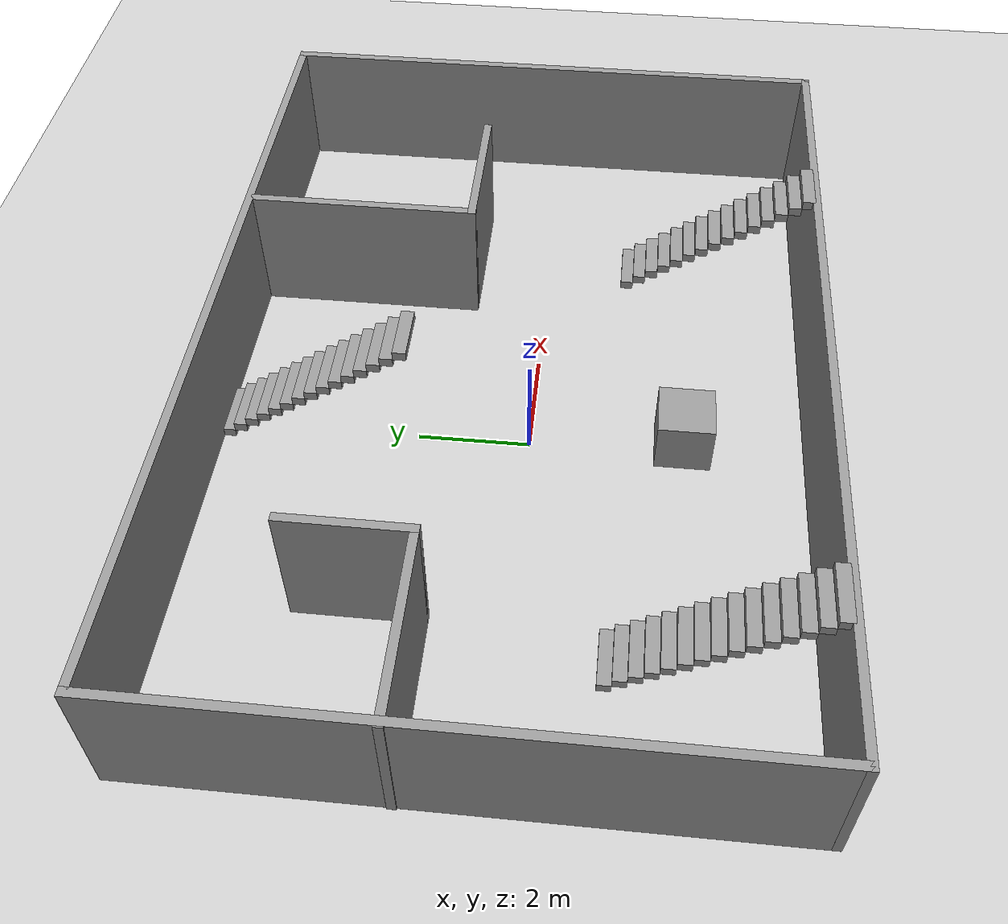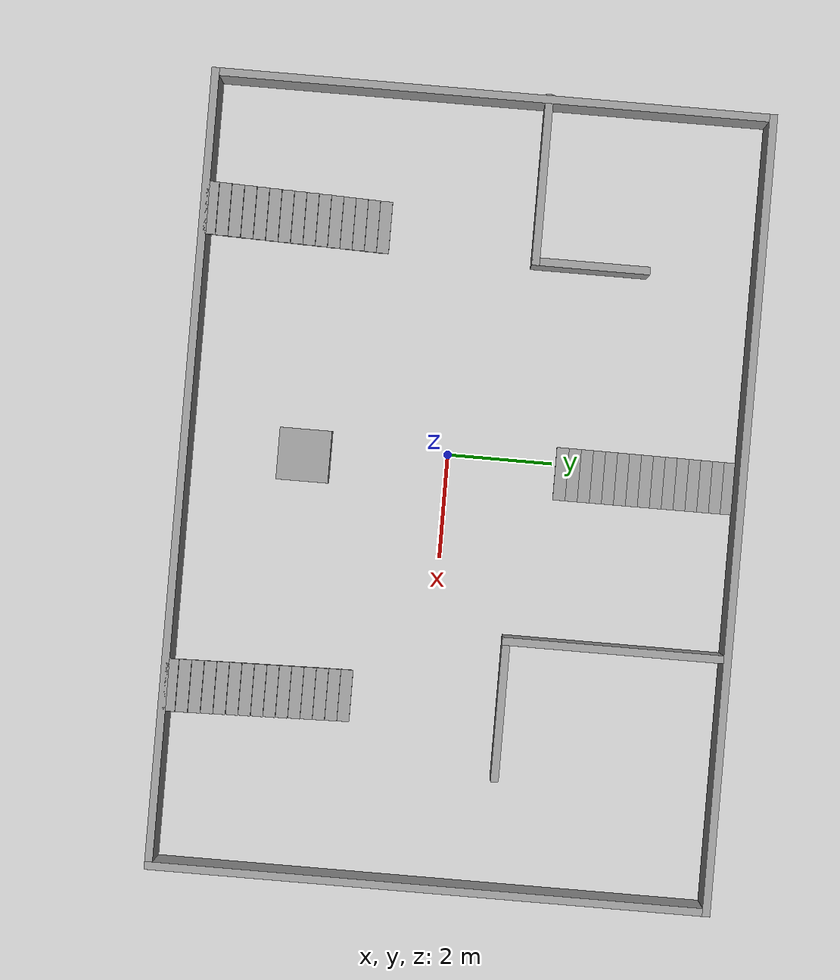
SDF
<sdf version="1.7">
 <world name="default">
  <light name="sun" type="directional">
   <pose>0 0 10 0 -0 0</pose>
   <diffuse>0.8 0.8 0.8 1</diffuse>
   <specular>0.2 0.2 0.2 1</specular>
   <attenuation>
    <range>1000</range>
    <constant>0.9</constant>
    <linear>0.01</linear>
    <quadratic>0.001</quadratic>
   </attenuation>
   <direction>-0.5 0.1 -0.9</direction>
   <spot><inner_angle>0</inner_angle><outer_angle>0</outer_angle><falloff>0</falloff></spot>
  </light>
  <model name="ground_plane">
   <static>1</static>
   <link name="link">
    <collision name="collision">
     <geometry><plane><normal>0 0 1</normal><size>100 100</size></plane></geometry>
     <surface>
      <contact><collide_bitmask>65535</collide_bitmask></contact>
      <friction><ode><mu>100</mu><mu2>50</mu2></ode></friction>
     </surface>
    </collision>
    <visual name="visual">
     <cast_shadows>0</cast_shadows>
     <geometry><plane><normal>0 0 1</normal><size>100 100</size></plane></geometry>
     <material>
      <script><uri>file://media/materials/scripts/gazebo.material</uri><name>Gazebo/Grey</name></script>
     </material>
    </visual>
   </link>
  </model>
  <gravity>0 0 -9.8</gravity>
  <magnetic_field>6e-06 2.3e-05 -4.2e-05</magnetic_field>
  <atmosphere type="adiabatic"/>
  <physics type="ode">
   <max_step_size>0.001</max_step_size>
   <real_time_factor>1</real_time_factor>
   <real_time_update_rate>1000</real_time_update_rate>
  </physics>
  <scene><ambient>0.4 0.4 0.4 1</ambient><background>0.7 0.7 0.7 1</background><shadows>1</shadows></scene>
  <spherical_coordinates>
   <surface_model>EARTH_WGS84</surface_model>
   <latitude_deg>0</latitude_deg>
   <longitude_deg>0</longitude_deg>
   <elevation>0</elevation>
   <heading_deg>0</heading_deg>
  </spherical_coordinates>
  <model name="wall2">
   <pose>0.678452 0.306167 0 0 -0 0</pose>
   <link name="Stairs_0">
    <visual name="Stairs_0_Visual_0">
     <pose>-4.95454 -1.89617 0.083333 0 -0 0</pose>
     <geometry><box><size>1 0.233333 0.166667</size></box></geometry>
     <material>
      <script><uri>file://media/materials/scripts/gazebo.material</uri><name>Gazebo/Grey</name></script>
      <ambient>1 1 1 1</ambient>
     </material>
     <meta><layer>0</layer></meta>
    </visual>
    <collision name="Stairs_0_Collision_0">
     <geometry><box><size>1 0.233333 0.166667</size></box></geometry>
     <pose>-4.95454 -1.89617 0.083333 0 -0 0</pose>
    </collision>
    <visual name="Stairs_0_Visual_1">
     <pose>-4.95454 -2.1295 0.25 0 -0 0</pose>
     <geometry><box><size>1 0.233333 0.166667</size></box></geometry>
     <material>
      <script><uri>file://media/materials/scripts/gazebo.material</uri><name>Gazebo/Grey</name></script>
      <ambient>1 1 1 1</ambient>
     </material>
     <meta><layer>0</layer></meta>
    </visual>
    <collision name="Stairs_0_Collision_1">
     <geometry><box><size>1 0.233333 0.166667</size></box></geometry>
     <pose>-4.95454 -2.1295 0.25 0 -0 0</pose>
    </collision>
    <visual name="Stairs_0_Visual_2">
     <pose>-4.95454 -2.36284 0.416667 0 -0 0</pose>
     <geometry><box><size>1 0.233333 0.166667</size></box></geometry>
     <material>
      <script><uri>file://media/materials/scripts/gazebo.material</uri><name>Gazebo/Grey</name></script>
      <ambient>1 1 1 1</ambient>
     </material>
     <meta><layer>0</layer></meta>
    </visual>
    <collision name="Stairs_0_Collision_2">
     <geometry><box><size>1 0.233333 0.166667</size></box></geometry>
     <pose>-4.95454 -2.36284 0.416667 0 -0 0</pose>
    </collision>
    <visual name="Stairs_0_Visual_3">
     <pose>-4.95454 -2.59617 0.583333 0 -0 0</pose>
     <geometry><box><size>1 0.233333 0.166667</size></box></geometry>
     <material>
      <script><uri>file://media/materials/scripts/gazebo.material</uri><name>Gazebo/Grey</name></script>
      <ambient>1 1 1 1</ambient>
     </material>
     <meta><layer>0</layer></meta>
    </visual>
    <collision name="Stairs_0_Collision_3">
     <geometry><box><size>1 0.233333 0.166667</size></box></geometry>
     <pose>-4.95454 -2.59617 0.583333 0 -0 0</pose>
    </collision>
    <visual name="Stairs_0_Visual_4">
     <pose>-4.95454 -2.8295 0.75 0 -0 0</pose>
     <geometry><box><size>1 0.233333 0.166667</size></box></geometry>
     <material>
      <script><uri>file://media/materials/scripts/gazebo.material</uri><name>Gazebo/Grey</name></script>
      <ambient>1 1 1 1</ambient>
     </material>
     <meta><layer>0</layer></meta>
    </visual>
    <collision name="Stairs_0_Collision_4">
     <geometry><box><size>1 0.233333 0.166667</size></box></geometry>
     <pose>-4.95454 -2.8295 0.75 0 -0 0</pose>
    </collision>
    <visual name="Stairs_0_Visual_5">
     <pose>-4.95454 -3.06284 0.916667 0 -0 0</pose>
     <geometry><box><size>1 0.233333 0.166667</size></box></geometry>
     <material>
      <script><uri>file://media/materials/scripts/gazebo.material</uri><name>Gazebo/Grey</name></script>
      <ambient>1 1 1 1</ambient>
     </material>
     <meta><layer>0</layer></meta>
    </visual>
    <collision name="Stairs_0_Collision_5">
     <geometry><box><size>1 0.233333 0.166667</size></box></geometry>
     <pose>-4.95454 -3.06284 0.916667 0 -0 0</pose>
    </collision>
    <visual name="Stairs_0_Visual_6">
     <pose>-4.95454 -3.29617 1.08333 0 -0 0</pose>
     <geometry><box><size>1 0.233333 0.166667</size></box></geometry>
     <material>
      <script><uri>file://media/materials/scripts/gazebo.material</uri><name>Gazebo/Grey</name></script>
      <ambient>1 1 1 1</ambient>
     </material>
     <meta><layer>0</layer></meta>
    </visual>
    <collision name="Stairs_0_Collision_6">
     <geometry><box><size>1 0.233333 0.166667</size></box></geometry>
     <pose>-4.95454 -3.29617 1.08333 0 -0 0</pose>
    </collision>
    <visual name="Stairs_0_Visual_7">
     <pose>-4.95454 -3.5295 1.25 0 -0 0</pose>
     <geometry><box><size>1 0.233333 0.166667</size></box></geometry>
     <material>
      <script><uri>file://media/materials/scripts/gazebo.material</uri><name>Gazebo/Grey</name></script>
      <ambient>1 1 1 1</ambient>
     </material>
     <meta><layer>0</layer></meta>
    </visual>
    <collision name="Stairs_0_Collision_7">
     <geometry><box><size>1 0.233333 0.166667</size></box></geometry>
     <pose>-4.95454 -3.5295 1.25 0 -0 0</pose>
    </collision>
    <visual name="Stairs_0_Visual_8">
     <pose>-4.95454 -3.76283 1.41667 0 -0 0</pose>
     <geometry><box><size>1 0.233333 0.166667</size></box></geometry>
     <material>
      <script><uri>file://media/materials/scripts/gazebo.material</uri><name>Gazebo/Grey</name></script>
      <ambient>1 1 1 1</ambient>
     </material>
     <meta><layer>0</layer></meta>
    </visual>
    <collision name="Stairs_0_Collision_8">
     <geometry><box><size>1 0.233333 0.166667</size></box></geometry>
     <pose>-4.95454 -3.76283 1.41667 0 -0 0</pose>
    </collision>
    <visual name="Stairs_0_Visual_9">
     <pose>-4.95454 -3.99617 1.58333 0 -0 0</pose>
     <geometry><box><size>1 0.233333 0.166667</size></box></geometry>
     <material>
      <script><uri>file://media/materials/scripts/gazebo.material</uri><name>Gazebo/Grey</name></script>
      <ambient>1 1 1 1</ambient>
     </material>
     <meta><layer>0</layer></meta>
    </visual>
    <collision name="Stairs_0_Collision_9">
     <geometry><box><size>1 0.233333 0.166667</size></box></geometry>
     <pose>-4.95454 -3.99617 1.58333 0 -0 0</pose>
    </collision>
    <visual name="Stairs_0_Visual_10">
     <pose>-4.95454 -4.2295 1.75 0 -0 0</pose>
     <geometry><box><size>1 0.233333 0.166667</size></box></geometry>
     <material>
      <script><uri>file://media/materials/scripts/gazebo.material</uri><name>Gazebo/Grey</name></script>
      <ambient>1 1 1 1</ambient>
     </material>
     <meta><layer>0</layer></meta>
    </visual>
    <collision name="Stairs_0_Collision_10">
     <geometry><box><size>1 0.233333 0.166667</size></box></geometry>
     <pose>-4.95454 -4.2295 1.75 0 -0 0</pose>
    </collision>
    <visual name="Stairs_0_Visual_11">
     <pose>-4.95454 -4.46284 1.91667 0 -0 0</pose>
     <geometry><box><size>1 0.233333 0.166667</size></box></geometry>
     <material>
      <script><uri>file://media/materials/scripts/gazebo.material</uri><name>Gazebo/Grey</name></script>
      <ambient>1 1 1 1</ambient>
     </material>
     <meta><layer>0</layer></meta>
    </visual>
    <collision name="Stairs_0_Collision_11">
     <geometry><box><size>1 0.233333 0.166667</size></box></geometry>
     <pose>-4.95454 -4.46284 1.91667 0 -0 0</pose>
    </collision>
    <visual name="Stairs_0_Visual_12">
     <pose>-4.95454 -4.69617 2.08333 0 -0 0</pose>
     <geometry><box><size>1 0.233333 0.166667</size></box></geometry>
     <material>
      <script><uri>file://media/materials/scripts/gazebo.material</uri><name>Gazebo/Grey</name></script>
      <ambient>1 1 1 1</ambient>
     </material>
     <meta><layer>0</layer></meta>
    </visual>
    <collision name="Stairs_0_Collision_12">
     <geometry><box><size>1 0.233333 0.166667</size></box></geometry>
     <pose>-4.95454 -4.69617 2.08333 0 -0 0</pose>
    </collision>
    <visual name="Stairs_0_Visual_13">
     <pose>-4.95454 -4.9295 2.25 0 -0 0</pose>
     <geometry><box><size>1 0.233333 0.166667</size></box></geometry>
     <material>
      <script><uri>file://media/materials/scripts/gazebo.material</uri><name>Gazebo/Grey</name></script>
      <ambient>1 1 1 1</ambient>
     </material>
     <meta><layer>0</layer></meta>
    </visual>
    <collision name="Stairs_0_Collision_13">
     <geometry><box><size>1 0.233333 0.166667</size></box></geometry>
     <pose>-4.95454 -4.9295 2.25 0 -0 0</pose>
    </collision>
    <visual name="Stairs_0_Visual_14">
     <pose>-4.95454 -5.16284 2.41667 0 -0 0</pose>
     <geometry><box><size>1 0.233333 0.166667</size></box></geometry>
     <material>
      <script><uri>file://media/materials/scripts/gazebo.material</uri><name>Gazebo/Grey</name></script>
      <ambient>1 1 1 1</ambient>
     </material>
     <meta><layer>0</layer></meta>
    </visual>
    <collision name="Stairs_0_Collision_14">
     <geometry><box><size>1 0.233333 0.166667</size></box></geometry>
     <pose>-4.95454 -5.16284 2.41667 0 -0 0</pose>
    </collision>
   </link>
   <link name="Stairs_1">
    <visual name="Stairs_1_Visual_0">
     <pose>-0.485702 5.12628 0.083333 0 -0 0</pose>
     <geometry><box><size>1 0.233333 0.166667</size></box></geometry>
     <material>
      <script><uri>file://media/materials/scripts/gazebo.material</uri><name>Gazebo/Grey</name></script>
      <ambient>1 1 1 1</ambient>
     </material>
     <meta><layer>0</layer></meta>
    </visual>
    <collision name="Stairs_1_Collision_0">
     <geometry><box><size>1 0.233333 0.166667</size></box></geometry>
     <pose>-0.485702 5.12628 0.083333 0 -0 0</pose>
    </collision>
    <visual name="Stairs_1_Visual_1">
     <pose>-0.485702 4.89295 0.25 0 -0 0</pose>
     <geometry><box><size>1 0.233333 0.166667</size></box></geometry>
     <material>
      <script><uri>file://media/materials/scripts/gazebo.material</uri><name>Gazebo/Grey</name></script>
      <ambient>1 1 1 1</ambient>
     </material>
     <meta><layer>0</layer></meta>
    </visual>
    <collision name="Stairs_1_Collision_1">
     <geometry><box><size>1 0.233333 0.166667</size></box></geometry>
     <pose>-0.485702 4.89295 0.25 0 -0 0</pose>
    </collision>
    <visual name="Stairs_1_Visual_2">
     <pose>-0.485702 4.65962 0.416667 0 -0 0</pose>
     <geometry><box><size>1 0.233333 0.166667</size></box></geometry>
     <material>
      <script><uri>file://media/materials/scripts/gazebo.material</uri><name>Gazebo/Grey</name></script>
      <ambient>1 1 1 1</ambient>
     </material>
     <meta><layer>0</layer></meta>
    </visual>
    <collision name="Stairs_1_Collision_2">
     <geometry><box><size>1 0.233333 0.166667</size></box></geometry>
     <pose>-0.485702 4.65962 0.416667 0 -0 0</pose>
    </collision>
    <visual name="Stairs_1_Visual_3">
     <pose>-0.485702 4.42628 0.583333 0 -0 0</pose>
     <geometry><box><size>1 0.233333 0.166667</size></box></geometry>
     <material>
      <script><uri>file://media/materials/scripts/gazebo.material</uri><name>Gazebo/Grey</name></script>
      <ambient>1 1 1 1</ambient>
     </material>
     <meta><layer>0</layer></meta>
    </visual>
    <collision name="Stairs_1_Collision_3">
     <geometry><box><size>1 0.233333 0.166667</size></box></geometry>
     <pose>-0.485702 4.42628 0.583333 0 -0 0</pose>
    </collision>
    <visual name="Stairs_1_Visual_4">
     <pose>-0.485702 4.19295 0.75 0 -0 0</pose>
     <geometry><box><size>1 0.233333 0.166667</size></box></geometry>
     <material>
      <script><uri>file://media/materials/scripts/gazebo.material</uri><name>Gazebo/Grey</name></script>
      <ambient>1 1 1 1</ambient>
     </material>
     <meta><layer>0</layer></meta>
    </visual>
    <collision name="Stairs_1_Collision_4">
     <geometry><box><size>1 0.233333 0.166667</size></box></geometry>
     <pose>-0.485702 4.19295 0.75 0 -0 0</pose>
    </collision>
    <visual name="Stairs_1_Visual_5">
     <pose>-0.485702 3.95962 0.916667 0 -0 0</pose>
     <geometry><box><size>1 0.233333 0.166667</size></box></geometry>
     <material>
      <script><uri>file://media/materials/scripts/gazebo.material</uri><name>Gazebo/Grey</name></script>
      <ambient>1 1 1 1</ambient>
     </material>
     <meta><layer>0</layer></meta>
    </visual>
    <collision name="Stairs_1_Collision_5">
     <geometry><box><size>1 0.233333 0.166667</size></box></geometry>
     <pose>-0.485702 3.95962 0.916667 0 -0 0</pose>
    </collision>
    <visual name="Stairs_1_Visual_6">
     <pose>-0.485702 3.72628 1.08333 0 -0 0</pose>
     <geometry><box><size>1 0.233333 0.166667</size></box></geometry>
     <material>
      <script><uri>file://media/materials/scripts/gazebo.material</uri><name>Gazebo/Grey</name></script>
      <ambient>1 1 1 1</ambient>
     </material>
     <meta><layer>0</layer></meta>
    </visual>
    <collision name="Stairs_1_Collision_6">
     <geometry><box><size>1 0.233333 0.166667</size></box></geometry>
     <pose>-0.485702 3.72628 1.08333 0 -0 0</pose>
    </collision>
    <visual name="Stairs_1_Visual_7">
     <pose>-0.485702 3.49295 1.25 0 -0 0</pose>
     <geometry><box><size>1 0.233333 0.166667</size></box></geometry>
     <material>
      <script><uri>file://media/materials/scripts/gazebo.material</uri><name>Gazebo/Grey</name></script>
      <ambient>1 1 1 1</ambient>
     </material>
     <meta><layer>0</layer></meta>
    </visual>
    <collision name="Stairs_1_Collision_7">
     <geometry><box><size>1 0.233333 0.166667</size></box></geometry>
     <pose>-0.485702 3.49295 1.25 0 -0 0</pose>
    </collision>
    <visual name="Stairs_1_Visual_8">
     <pose>-0.485702 3.25962 1.41667 0 -0 0</pose>
     <geometry><box><size>1 0.233333 0.166667</size></box></geometry>
     <material>
      <script><uri>file://media/materials/scripts/gazebo.material</uri><name>Gazebo/Grey</name></script>
      <ambient>1 1 1 1</ambient>
     </material>
     <meta><layer>0</layer></meta>
    </visual>
    <collision name="Stairs_1_Collision_8">
     <geometry><box><size>1 0.233333 0.166667</size></box></geometry>
     <pose>-0.485702 3.25962 1.41667 0 -0 0</pose>
    </collision>
    <visual name="Stairs_1_Visual_9">
     <pose>-0.485702 3.02628 1.58333 0 -0 0</pose>
     <geometry><box><size>1 0.233333 0.166667</size></box></geometry>
     <material>
      <script><uri>file://media/materials/scripts/gazebo.material</uri><name>Gazebo/Grey</name></script>
      <ambient>1 1 1 1</ambient>
     </material>
     <meta><layer>0</layer></meta>
    </visual>
    <collision name="Stairs_1_Collision_9">
     <geometry><box><size>1 0.233333 0.166667</size></box></geometry>
     <pose>-0.485702 3.02628 1.58333 0 -0 0</pose>
    </collision>
    <visual name="Stairs_1_Visual_10">
     <pose>-0.485702 2.79295 1.75 0 -0 0</pose>
     <geometry><box><size>1 0.233333 0.166667</size></box></geometry>
     <material>
      <script><uri>file://media/materials/scripts/gazebo.material</uri><name>Gazebo/Grey</name></script>
      <ambient>1 1 1 1</ambient>
     </material>
     <meta><layer>0</layer></meta>
    </visual>
    <collision name="Stairs_1_Collision_10">
     <geometry><box><size>1 0.233333 0.166667</size></box></geometry>
     <pose>-0.485702 2.79295 1.75 0 -0 0</pose>
    </collision>
    <visual name="Stairs_1_Visual_11">
     <pose>-0.485702 2.55962 1.91667 0 -0 0</pose>
     <geometry><box><size>1 0.233333 0.166667</size></box></geometry>
     <material>
      <script><uri>file://media/materials/scripts/gazebo.material</uri><name>Gazebo/Grey</name></script>
      <ambient>1 1 1 1</ambient>
     </material>
     <meta><layer>0</layer></meta>
    </visual>
    <collision name="Stairs_1_Collision_11">
     <geometry><box><size>1 0.233333 0.166667</size></box></geometry>
     <pose>-0.485702 2.55962 1.91667 0 -0 0</pose>
    </collision>
    <visual name="Stairs_1_Visual_12">
     <pose>-0.485702 2.32628 2.08333 0 -0 0</pose>
     <geometry><box><size>1 0.233333 0.166667</size></box></geometry>
     <material>
      <script><uri>file://media/materials/scripts/gazebo.material</uri><name>Gazebo/Grey</name></script>
      <ambient>1 1 1 1</ambient>
     </material>
     <meta><layer>0</layer></meta>
    </visual>
    <collision name="Stairs_1_Collision_12">
     <geometry><box><size>1 0.233333 0.166667</size></box></geometry>
     <pose>-0.485702 2.32628 2.08333 0 -0 0</pose>
    </collision>
    <visual name="Stairs_1_Visual_13">
     <pose>-0.485702 2.09295 2.25 0 -0 0</pose>
     <geometry><box><size>1 0.233333 0.166667</size></box></geometry>
     <material>
      <script><uri>file://media/materials/scripts/gazebo.material</uri><name>Gazebo/Grey</name></script>
      <ambient>1 1 1 1</ambient>
     </material>
     <meta><layer>0</layer></meta>
    </visual>
    <collision name="Stairs_1_Collision_13">
     <geometry><box><size>1 0.233333 0.166667</size></box></geometry>
     <pose>-0.485702 2.09295 2.25 0 -0 0</pose>
    </collision>
    <visual name="Stairs_1_Visual_14">
     <pose>-0.485702 1.85962 2.41667 0 -0 0</pose>
     <geometry><box><size>1 0.233333 0.166667</size></box></geometry>
     <material>
      <script><uri>file://media/materials/scripts/gazebo.material</uri><name>Gazebo/Grey</name></script>
      <ambient>1 1 1 1</ambient>
     </material>
     <meta><layer>0</layer></meta>
    </visual>
    <collision name="Stairs_1_Collision_14">
     <geometry><box><size>1 0.233333 0.166667</size></box></geometry>
     <pose>-0.485702 1.85962 2.41667 0 -0 0</pose>
    </collision>
   </link>
   <link name="Stairs_2">
    <visual name="Stairs_2_Visual_0">
     <pose>4.11613 -1.89617 0.083333 0 -0 0</pose>
     <geometry><box><size>1 0.233333 0.166667</size></box></geometry>
     <material>
      <script><uri>file://media/materials/scripts/gazebo.material</uri><name>Gazebo/Grey</name></script>
      <ambient>1 1 1 1</ambient>
     </material>
     <meta><layer>0</layer></meta>
    </visual>
    <collision name="Stairs_2_Collision_0">
     <geometry><box><size>1 0.233333 0.166667</size></box></geometry>
     <pose>4.11613 -1.89617 0.083333 0 -0 0</pose>
    </collision>
    <visual name="Stairs_2_Visual_1">
     <pose>4.11613 -2.1295 0.25 0 -0 0</pose>
     <geometry><box><size>1 0.233333 0.166667</size></box></geometry>
     <material>
      <script><uri>file://media/materials/scripts/gazebo.material</uri><name>Gazebo/Grey</name></script>
      <ambient>1 1 1 1</ambient>
     </material>
     <meta><layer>0</layer></meta>
    </visual>
    <collision name="Stairs_2_Collision_1">
     <geometry><box><size>1 0.233333 0.166667</size></box></geometry>
     <pose>4.11613 -2.1295 0.25 0 -0 0</pose>
    </collision>
    <visual name="Stairs_2_Visual_2">
     <pose>4.11613 -2.36284 0.416667 0 -0 0</pose>
     <geometry><box><size>1 0.233333 0.166667</size></box></geometry>
     <material>
      <script><uri>file://media/materials/scripts/gazebo.material</uri><name>Gazebo/Grey</name></script>
      <ambient>1 1 1 1</ambient>
     </material>
     <meta><layer>0</layer></meta>
    </visual>
    <collision name="Stairs_2_Collision_2">
     <geometry><box><size>1 0.233333 0.166667</size></box></geometry>
     <pose>4.11613 -2.36284 0.416667 0 -0 0</pose>
    </collision>
    <visual name="Stairs_2_Visual_3">
     <pose>4.11613 -2.59617 0.583333 0 -0 0</pose>
     <geometry><box><size>1 0.233333 0.166667</size></box></geometry>
     <material>
      <script><uri>file://media/materials/scripts/gazebo.material</uri><name>Gazebo/Grey</name></script>
      <ambient>1 1 1 1</ambient>
     </material>
     <meta><layer>0</layer></meta>
    </visual>
    <collision name="Stairs_2_Collision_3">
     <geometry><box><size>1 0.233333 0.166667</size></box></geometry>
     <pose>4.11613 -2.59617 0.583333 0 -0 0</pose>
    </collision>
    <visual name="Stairs_2_Visual_4">
     <pose>4.11613 -2.8295 0.75 0 -0 0</pose>
     <geometry><box><size>1 0.233333 0.166667</size></box></geometry>
     <material>
      <script><uri>file://media/materials/scripts/gazebo.material</uri><name>Gazebo/Grey</name></script>
      <ambient>1 1 1 1</ambient>
     </material>
     <meta><layer>0</layer></meta>
    </visual>
    <collision name="Stairs_2_Collision_4">
     <geometry><box><size>1 0.233333 0.166667</size></box></geometry>
     <pose>4.11613 -2.8295 0.75 0 -0 0</pose>
    </collision>
    <visual name="Stairs_2_Visual_5">
     <pose>4.11613 -3.06284 0.916667 0 -0 0</pose>
     <geometry><box><size>1 0.233333 0.166667</size></box></geometry>
     <material>
      <script><uri>file://media/materials/scripts/gazebo.material</uri><name>Gazebo/Grey</name></script>
      <ambient>1 1 1 1</ambient>
     </material>
     <meta><layer>0</layer></meta>
    </visual>
    <collision name="Stairs_2_Collision_5">
     <geometry><box><size>1 0.233333 0.166667</size></box></geometry>
     <pose>4.11613 -3.06284 0.916667 0 -0 0</pose>
    </collision>
    <visual name="Stairs_2_Visual_6">
     <pose>4.11613 -3.29617 1.08333 0 -0 0</pose>
     <geometry><box><size>1 0.233333 0.166667</size></box></geometry>
     <material>
      <script><uri>file://media/materials/scripts/gazebo.material</uri><name>Gazebo/Grey</name></script>
      <ambient>1 1 1 1</ambient>
     </material>
     <meta><layer>0</layer></meta>
    </visual>
    <collision name="Stairs_2_Collision_6">
     <geometry><box><size>1 0.233333 0.166667</size></box></geometry>
     <pose>4.11613 -3.29617 1.08333 0 -0 0</pose>
    </collision>
    <visual name="Stairs_2_Visual_7">
     <pose>4.11613 -3.5295 1.25 0 -0 0</pose>
     <geometry><box><size>1 0.233333 0.166667</size></box></geometry>
     <material>
      <script><uri>file://media/materials/scripts/gazebo.material</uri><name>Gazebo/Grey</name></script>
      <ambient>1 1 1 1</ambient>
     </material>
     <meta><layer>0</layer></meta>
    </visual>
    <collision name="Stairs_2_Collision_7">
     <geometry><box><size>1 0.233333 0.166667</size></box></geometry>
     <pose>4.11613 -3.5295 1.25 0 -0 0</pose>
    </collision>
    <visual name="Stairs_2_Visual_8">
     <pose>4.11613 -3.76283 1.41667 0 -0 0</pose>
     <geometry><box><size>1 0.233333 0.166667</size></box></geometry>
     <material>
      <script><uri>file://media/materials/scripts/gazebo.material</uri><name>Gazebo/Grey</name></script>
      <ambient>1 1 1 1</ambient>
     </material>
     <meta><layer>0</layer></meta>
    </visual>
    <collision name="Stairs_2_Collision_8">
     <geometry><box><size>1 0.233333 0.166667</size></box></geometry>
     <pose>4.11613 -3.76283 1.41667 0 -0 0</pose>
    </collision>
    <visual name="Stairs_2_Visual_9">
     <pose>4.11613 -3.99617 1.58333 0 -0 0</pose>
     <geometry><box><size>1 0.233333 0.166667</size></box></geometry>
     <material>
      <script><uri>file://media/materials/scripts/gazebo.material</uri><name>Gazebo/Grey</name></script>
      <ambient>1 1 1 1</ambient>
     </material>
     <meta><layer>0</layer></meta>
    </visual>
    <collision name="Stairs_2_Collision_9">
     <geometry><box><size>1 0.233333 0.166667</size></box></geometry>
     <pose>4.11613 -3.99617 1.58333 0 -0 0</pose>
    </collision>
    <visual name="Stairs_2_Visual_10">
     <pose>4.11613 -4.2295 1.75 0 -0 0</pose>
     <geometry><box><size>1 0.233333 0.166667</size></box></geometry>
     <material>
      <script><uri>file://media/materials/scripts/gazebo.material</uri><name>Gazebo/Grey</name></script>
      <ambient>1 1 1 1</ambient>
     </material>
     <meta><layer>0</layer></meta>
    </visual>
    <collision name="Stairs_2_Collision_10">
     <geometry><box><size>1 0.233333 0.166667</size></box></geometry>
     <pose>4.11613 -4.2295 1.75 0 -0 0</pose>
    </collision>
    <visual name="Stairs_2_Visual_11">
     <pose>4.11613 -4.46284 1.91667 0 -0 0</pose>
     <geometry><box><size>1 0.233333 0.166667</size></box></geometry>
     <material>
      <script><uri>file://media/materials/scripts/gazebo.material</uri><name>Gazebo/Grey</name></script>
      <ambient>1 1 1 1</ambient>
     </material>
     <meta><layer>0</layer></meta>
    </visual>
    <collision name="Stairs_2_Collision_11">
     <geometry><box><size>1 0.233333 0.166667</size></box></geometry>
     <pose>4.11613 -4.46284 1.91667 0 -0 0</pose>
    </collision>
    <visual name="Stairs_2_Visual_12">
     <pose>4.11613 -4.69617 2.08333 0 -0 0</pose>
     <geometry><box><size>1 0.233333 0.166667</size></box></geometry>
     <material>
      <script><uri>file://media/materials/scripts/gazebo.material</uri><name>Gazebo/Grey</name></script>
      <ambient>1 1 1 1</ambient>
     </material>
     <meta><layer>0</layer></meta>
    </visual>
    <collision name="Stairs_2_Collision_12">
     <geometry><box><size>1 0.233333 0.166667</size></box></geometry>
     <pose>4.11613 -4.69617 2.08333 0 -0 0</pose>
    </collision>
    <visual name="Stairs_2_Visual_13">
     <pose>4.11613 -4.9295 2.25 0 -0 0</pose>
     <geometry><box><size>1 0.233333 0.166667</size></box></geometry>
     <material>
      <script><uri>file://media/materials/scripts/gazebo.material</uri><name>Gazebo/Grey</name></script>
      <ambient>1 1 1 1</ambient>
     </material>
     <meta><layer>0</layer></meta>
    </visual>
    <collision name="Stairs_2_Collision_13">
     <geometry><box><size>1 0.233333 0.166667</size></box></geometry>
     <pose>4.11613 -4.9295 2.25 0 -0 0</pose>
    </collision>
    <visual name="Stairs_2_Visual_14">
     <pose>4.11613 -5.16284 2.41667 0 -0 0</pose>
     <geometry><box><size>1 0.233333 0.166667</size></box></geometry>
     <material>
      <script><uri>file://media/materials/scripts/gazebo.material</uri><name>Gazebo/Grey</name></script>
      <ambient>1 1 1 1</ambient>
     </material>
     <meta><layer>0</layer></meta>
    </visual>
    <collision name="Stairs_2_Collision_14">
     <geometry><box><size>1 0.233333 0.166667</size></box></geometry>
     <pose>4.11613 -5.16284 2.41667 0 -0 0</pose>
    </collision>
   </link>
   <link name="Wall_11">
    <collision name="Wall_11_Collision">
     <geometry><box><size>15.25 0.15 2.5</size></box></geometry>
     <pose>0 0 1.25 0 -0 0</pose>
    </collision>
    <visual name="Wall_11_Visual">
     <pose>0 0 1.25 0 -0 0</pose>
     <geometry><box><size>15.25 0.15 2.5</size></box></geometry>
     <material>
      <script><uri>file://media/materials/scripts/gazebo.material</uri><name>Gazebo/Grey</name></script>
      <ambient>1 1 1 1</ambient>
     </material>
     <meta><layer>0</layer></meta>
    </visual>
    <pose>0.011355 5.3 0 0 -0 0</pose>
   </link>
   <link name="Wall_12">
    <collision name="Wall_12_Collision">
     <geometry><box><size>10.75 0.15 2.5</size></box></geometry>
     <pose>0 0 1.25 0 -0 0</pose>
    </collision>
    <visual name="Wall_12_Visual">
     <pose>0 0 1.25 0 -0 0</pose>
     <geometry><box><size>10.75 0.15 2.5</size></box></geometry>
     <material>
      <script><uri>file://media/materials/scripts/gazebo.material</uri><name>Gazebo/Grey</name></script>
      <ambient>1 1 1 1</ambient>
     </material>
     <meta><layer>0</layer></meta>
    </visual>
    <pose>7.56135 -0 0 0 -0 -1.5708</pose>
   </link>
   <link name="Wall_13">
    <collision name="Wall_13_Collision">
     <geometry><box><size>15.25 0.15 2.5</size></box></geometry>
     <pose>0 0 1.25 0 -0 0</pose>
    </collision>
    <visual name="Wall_13_Visual">
     <pose>0 0 1.25 0 -0 0</pose>
     <geometry><box><size>15.25 0.15 2.5</size></box></geometry>
     <material>
      <script><uri>file://media/materials/scripts/gazebo.material</uri><name>Gazebo/Grey</name></script>
      <ambient>1 1 1 1</ambient>
     </material>
     <meta><layer>0</layer></meta>
    </visual>
    <pose>0.011355 -5.3 0 0 -0 3.14159</pose>
   </link>
   <link name="Wall_14">
    <collision name="Wall_14_Collision">
     <geometry><box><size>10.75 0.15 2.5</size></box></geometry>
     <pose>0 0 1.25 0 -0 0</pose>
    </collision>
    <visual name="Wall_14_Visual">
     <pose>0 0 1.25 0 -0 0</pose>
     <geometry><box><size>10.75 0.15 2.5</size></box></geometry>
     <material>
      <script><uri>file://media/materials/scripts/gazebo.material</uri><name>Gazebo/Grey</name></script>
      <ambient>1 1 1 1</ambient>
     </material>
     <meta><layer>0</layer></meta>
    </visual>
    <pose>-7.53864 -0 0 0 -0 1.5708</pose>
   </link>
   <link name="Wall_18">
    <collision name="Wall_18_Collision">
     <geometry><box><size>3.25 0.15 2.5</size></box></geometry>
     <pose>0 0 1.25 0 -0 0</pose>
    </collision>
    <visual name="Wall_18_Visual">
     <pose>0 0 1.25 0 -0 0</pose>
     <geometry><box><size>3.25 0.15 2.5</size></box></geometry>
     <material>
      <script><uri>file://media/materials/scripts/gazebo.material</uri><name>Gazebo/Grey</name></script>
      <ambient>1 1 1 1</ambient>
     </material>
     <meta><layer>0</layer></meta>
    </visual>
    <pose>-6.01136 1.04573 0 0 -0 0</pose>
   </link>
   <link name="Wall_19">
    <collision name="Wall_19_Collision">
     <geometry><box><size>2.25 0.15 2.5</size></box></geometry>
     <pose>0 0 1.25 0 -0 0</pose>
    </collision>
    <visual name="Wall_19_Visual">
     <pose>0 0 1.25 0 -0 0</pose>
     <geometry><box><size>2.25 0.15 2.5</size></box></geometry>
     <material>
      <script><uri>file://media/materials/scripts/gazebo.material</uri><name>Gazebo/Grey</name></script>
      <ambient>1 1 1 1</ambient>
     </material>
     <meta><layer>0</layer></meta>
    </visual>
    <pose>-4.46136 2.09573 0 0 -0 1.5708</pose>
   </link>
   <link name="Wall_22">
    <collision name="Wall_22_Collision">
     <geometry><box><size>4.25 0.15 2.5</size></box></geometry>
     <pose>0 0 1.25 0 -0 0</pose>
    </collision>
    <visual name="Wall_22_Visual">
     <pose>0 0 1.25 0 -0 0</pose>
     <geometry><box><size>4.25 0.15 2.5</size></box></geometry>
     <material>
      <script><uri>file://media/materials/scripts/gazebo.material</uri><name>Gazebo/Grey</name></script>
      <ambient>1 1 1 1</ambient>
     </material>
     <meta><layer>0</layer></meta>
    </visual>
    <pose>2.75952 3.14536 0 0 -0 -1.5708</pose>
   </link>
   <link name="Wall_23">
    <collision name="Wall_23_Collision">
     <geometry><box><size>2.75 0.15 2.5</size></box></geometry>
     <pose>0 0 1.25 0 -0 0</pose>
    </collision>
    <visual name="Wall_23_Visual">
     <pose>0 0 1.25 0 -0 0</pose>
     <geometry><box><size>2.75 0.15 2.5</size></box></geometry>
     <material>
      <script><uri>file://media/materials/scripts/gazebo.material</uri><name>Gazebo/Grey</name></script>
      <ambient>1 1 1 1</ambient>
     </material>
     <meta><layer>0</layer></meta>
    </visual>
    <pose>4.05952 1.09536 0 0 -0 0</pose>
   </link>
   <static>1</static>
  </model>
  <model name="unit_box">
   <pose>0.237929 -2.7506 0.5 0 -0 0</pose>
   <link name="link">
    <inertial>
     <mass>1</mass>
     <inertia>
      <ixx>0.166667</ixx>
      <ixy>0</ixy>
      <ixz>0</ixz>
      <iyy>0.166667</iyy>
      <iyz>0</iyz>
      <izz>0.166667</izz>
     </inertia>
    </inertial>
    <collision name="collision"><geometry><box><size>1 1 1</size></box></geometry></collision>
    <visual name="visual">
     <geometry><box><size>1 1 1</size></box></geometry>
     <material>
      <script><name>Gazebo/Grey</name><uri>file://media/materials/scripts/gazebo.material</uri></script>
     </material>
    </visual>
   </link>
  </model>
 </world>
</sdf>
